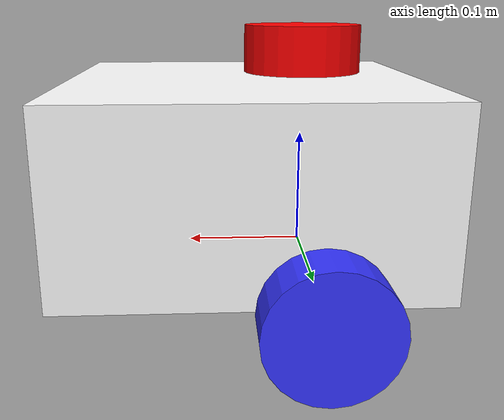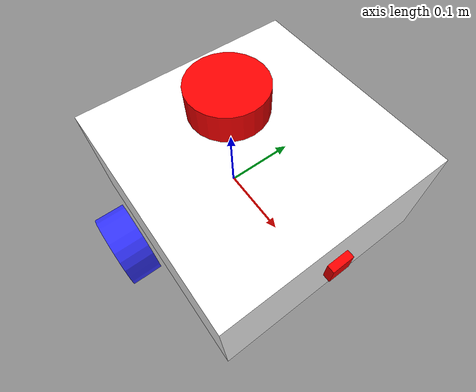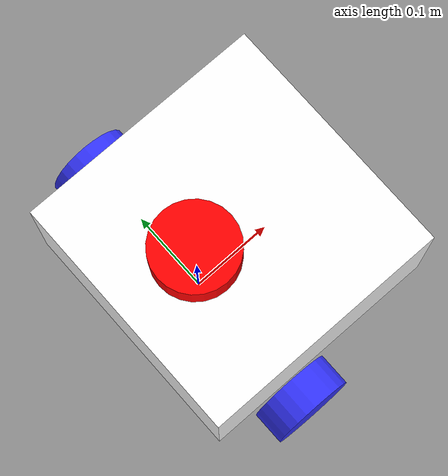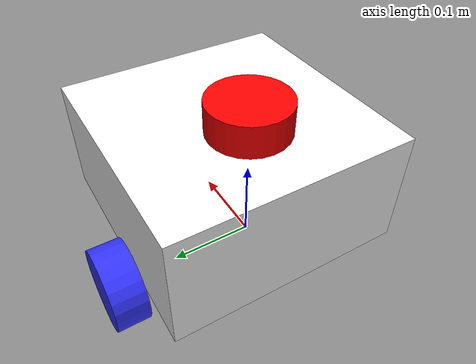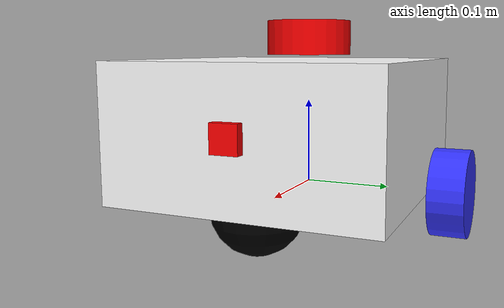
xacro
<?xml version="1.0"?>
<robot xmlns:xacro="http://www.ros.org/wiki/xacro"  name="robot">

    <!-- In questo file andremo a richiamare tutti gli altri file URDF che contengono le varie parti del robot-->

     <!-- Con questa riga di codice stiamo richiamando il file che contiene la struttura di base -->
    <xacro:include filename="robot_core.xacro" />

    <!--                                         SCELTA CONTROLLO                                    -->

    <xacro:arg name="use_ros2_control" default="true"/>

    <xacro:if value="$(arg use_ros2_control)">

    <!-- Con questa riga andremo ad includere il file che contiene le righe di codice per utilizzare il controllo
         di ROS2_CONTROL -->

     <xacro:include filename="ros2_control.xacro"/>

    </xacro:if>

    <xacro:unless value="$(arg use_ros2_control)">

    <!-- Con questa riga andremo ad includere il file che contiene le righe di codice per utilizzare il controllo
     di Gazebo -->

    <xacro:include filename="gazebo_control.xacro"/>

    </xacro:unless>

    <!--                                           SENSORI                                                    -->

    <!-- Inseriamo il file che si occuperà di far funzionare il sensore LIDAR sul nostro robot simulato -->
    <xacro:include filename="lidar.xacro"/>

    <!-- Inseriamo il file che si occuperà di far funzionare il sensore FOTOCAMERA sul nostro robot simulato -->
    <xacro:include filename="camera.xacro"/>

    <!-- Inseriamo il file che si occuperà di far funzionare il sensore FOTOCAMERA DI PROFONDITA' sul nostro robot simulato -->

</robot>

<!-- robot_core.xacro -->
<robot xmlns:xacro="http://www.ros.org/wiki/xacro">

    <xacro:include filename="inertial_macros.xacro"/>

    <!-- Andiamo a definire i colori che avrà il nostro robot -->
    <!-- ovviamente i valori sono standard si possono trovare su internet -->

    <material name="white">
        <color rgba="1 1 1 1" />
    </material>

    <material name="orange">
        <color rgba="1 0.3 0.1 1" />
    </material>

    <material name="blue">
        <color rgba="0.2 0.2 1 1" />
    </material>

    <material name="black">
        <color rgba="0 0 0 1" />
    </material>

    <material name="red">
        <color rgba="1 0 0 1" />
    </material>

    <!-- Adesso iniziamo la sezione dove decriviamo i link che avrà il nostro robot,
         per convenzione stabiliamo che il primo link venga chiamato "base_link"      -->

         <link name="base_link">

         </link>

        <!-- TERNA BASE -->

        <joint name="chassis_joint" type="fixed">
            <parent link="base_link"/>
            <child link="chassis"/>
            <origin xyz="-0.1 0 0"/>
        </joint>

        <!-- TELAIO -->

        <link name="chassis">
            <visual>
                <origin xyz="0.15 0 0.075"/>
                <geometry>
                    <box size="0.3 0.3 0.15"/>
                </geometry>
                <material name="white"/>
            </visual>
            <collision>
                <origin xyz="0.15 0 0.075"/>
                <geometry>
                    <box size="0.3 0.3 0.15"/>
                </geometry>
            </collision>
            <xacro:inertial_box mass="0.5" x="0.3" y="0.3" z="0.15">
                <origin xyz="0.15 0 0.075" rpy="0 0 0"/>
            </xacro:inertial_box>
        </link>

        <!-- Andiamo ad aggiungere le TAG per GAZEBO affinchè riesca a funzionare senza problemi, specifichiamo il colore-->

        <gazebo reference="chassis">
            <material>Gazebo/White</material>
        </gazebo>

        <!-- RUOTA SINISTRA -->

        <joint name="left_wheel_joint" type="continuous">
            <parent link="base_link"/>
            <child link="left_wheel"/>
            <origin xyz="0 0.175 0" rpy="-${pi/2} 0 0"/>
            <axis xyz="0 0 1"/>
        </joint>

        <link name="left_wheel">
            <visual>
                <geometry>
                    <cylinder radius="0.05" length="0.04"/>
                </geometry>
                <material name="blue"/>
            </visual>
            <collision>
                <geometry>
                    <sphere radius="0.05"/>
                </geometry>
            </collision>
            <xacro:inertial_cylinder mass="0.1" length="0.04" radius="0.05">
                <origin xyz="0 0 0" rpy="0 0 0"/>
            </xacro:inertial_cylinder>
        </link>

        <gazebo reference="left_wheel">
            <material>Gazebo/Blue</material>
        </gazebo>

        <!-- RUOTA DESTRA -->

        <joint name="right_wheel_joint" type="continuous">
            <parent link="base_link"/>
            <child link="right_wheel"/>
            <origin xyz="0 -0.175 0" rpy="${pi/2} 0 0"/>
            <axis xyz="0 0 -1"/>
        </joint>

        <link name="right_wheel">
            <visual>
                <geometry>
                    <cylinder radius="0.05" length="0.04"/>
                </geometry>
                <material name="blue"/>
            </visual>
            <collision>
                <geometry>
                    <sphere radius="0.05"/>
                </geometry>
            </collision>
            <xacro:inertial_cylinder mass="0.1" length="0.04" radius="0.05">
                <origin xyz="0 0 0" rpy="0 0 0"/>
            </xacro:inertial_cylinder>
        </link>

        <gazebo reference="right_wheel">
            <material>Gazebo/Blue</material>
        </gazebo>

        <!-- RUOTA FOLLE -->

        <joint name="caster_wheel_joint" type="fixed">
            <parent link="chassis"/>
            <child link="caster_wheel"/>
            <origin xyz="0.24 0 0"/>
        </joint>

        <link name="caster_wheel">
            <visual>
                <geometry>
                    <sphere radius="0.05"/>
                </geometry>
                <material name="black"/>
            </visual>
            <collision>
                <geometry>
                    <sphere radius="0.05"/>
                </geometry>
            </collision>
            <xacro:inertial_sphere mass="0.1" radius="0.05">
                <origin xyz="0 0 0" rpy="0 0 0"/>
            </xacro:inertial_sphere>
        </link>

        <gazebo reference="caster_wheel">
            <material>Gazebo/Black</material>
            <!-- possiamo impostare anche i coefficenti di attrito per i link -->
            <mu1 value="0.001"/>
            <mu2 value="0.001"/>
        </gazebo>

</robot>

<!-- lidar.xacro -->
<robot xmlns:xacro="http://www.ros.org/wiki/xacro" >

        <joint name="laser_joint" type="fixed">
            <parent link="chassis"/>
            <child link="laser_frame"/>
            <origin xyz="0.1 0 0.175" rpy="0 0 0"/>
        </joint>

        <link name="laser_frame">
            <visual>
                <geometry>
                    <cylinder radius="0.05" length="0.04"/>
                </geometry>
                <material name="red"/>
            </visual>
            <collision>
                <geometry>
                    <cylinder radius="0.05" length="0.04"/>
                </geometry>
            </collision>
            <xacro:inertial_cylinder mass="0.1" length="0.04" radius="0.05">
                <origin xyz="0 0 0" rpy="0 0 0"/>
            </xacro:inertial_cylinder>
        </link>

        <!-- Adesso è importante andare ad aggiungere i tag di gazebo per far funzionare la simulazione-->

        <gazebo reference="laser_frame">

            <material>Gazebo/Red</material>

            <!-- aggiungiamo il tag sensor di tipo "ray" quindi che indica un sensore simulato -->
            <sensor name="laser" type="ray">
                <pose>0 0 0 0 0 0 </pose>   <!-- questo indica che la posizione del sensore è uguale a quella del link -->
                <visualize>false</visualize> <!-- serve per abilitare la visualizzazione in gazebo -->
                <update_rate>10</update_rate> <!-- espresso in secondi -->

                <!-- il ray tag serve per specificare i parametri del sensore simulato -->
                <ray>
                    <scan>
                        <horizontal>
                            <samples>360</samples>
                            <min_angle>-3.14</min_angle>
                            <max_angle>3.14</max_angle>
                        </horizontal>
                    </scan>
                    <range>
                        <min>0.3</min>
                        <max>12</max>
                    </range>
                </ray>

                <plugin name="laser_controller" filename="libgazebo_ros_ray_sensor.so">
                    <ros>
                        <argument>~/out:=scan</argument>
                    </ros>
                    <output_type>sensor_msgs/LaserScan</output_type>
                    <frame_name>laser_frame</frame_name>
                </plugin>

            </sensor>

        </gazebo>

</robot>

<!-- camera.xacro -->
<robot xmlns:xacro="http://www.ros.org/wiki/xacro" >

        <joint name="camera_joint" type="fixed">
            <parent link="chassis"/>
            <child link="camera_link"/>
            <origin xyz="0.305 0 0.08" rpy="0 0 0"/>
        </joint>

        <!-- nel caso la fotocamera fosse mobile o estraibile allora dovremmo considerare anche i tag di collisione e
             inerzia, nel nostro caso per semplicità la supponiamo fissa con il telaio-->
        <link name="camera_link">
            <visual>
                <geometry>
                    <box size="0.010 0.03 0.03"/>
                </geometry>
                <material name="red"/>
            </visual>
        </link>

             <joint name="camera_optical_joint" type="fixed">
                <parent link="camera_link"/>
                <child link="camera_link_optical"/>
                <origin xyz="0 0 0" rpy="${-pi/2} 0 ${-pi/2}"/>
            </joint>

            <!-- Questo link non ha bisogno dei tag di visualizzazione, è un link invisibile che però è necessario-->
            <link name="camera_link_optical"></link>

        <!-- Adesso è importante andare ad aggiungere i tag di gazebo per far funzionare la simulazione-->

        <gazebo reference="camera_link">

            <material>Gazebo/Red</material>

            <!-- aggiungiamo il tag sensor di tipo "camera" quindi che indica un sensore simulato -->
            <sensor name="camera" type="camera">
                <pose>0 0 0 0 0 0 </pose>   <!-- questo indica che la posizione del sensore è uguale a quella del link -->
                <visualize>true</visualize> <!-- serve per abilitare la visualizzazione in gazebo -->
                <update_rate>10</update_rate> <!-- espresso in secondi -->

                <!-- il camera tag serve per specificare i parametri del sensore simulato -->
                <camera>

                    <horizontal_fov>1.089</horizontal_fov>  <!-- indica quanto è ingrandita l'immagine, il parametro è espresso in radianti -->

                    <image>
                        <format>R8G8B8</format> <!-- indica il formato dell'immagine 8bit per ogni canale R G B-->
                        <width>640</width>
                        <height>480</height>
                    </image>

                    <!-- qui indichiamo le distanze entro il quale la fotocamera può vedere -->
                    <clip>
                        <near>0.05</near>
                        <far>8.0</far>
                    </clip>

                </camera>

                <!-- ricordiamo che i plugin sono molto importanti perche permettono la comunicazione di gazebo con i
                     programmi esterni al simulatore e quindi ros-->
                <plugin name="camera_controller" filename="libgazebo_ros_camera.so">

                    <frame_name>camera_link_optical</frame_name>

                </plugin>

            </sensor>

        </gazebo>

</robot>
